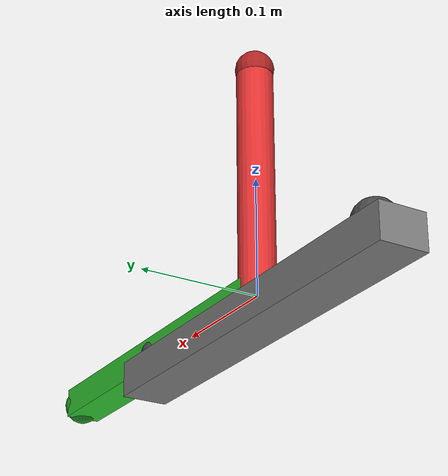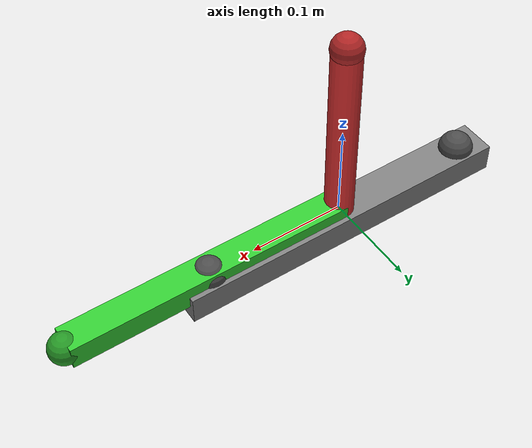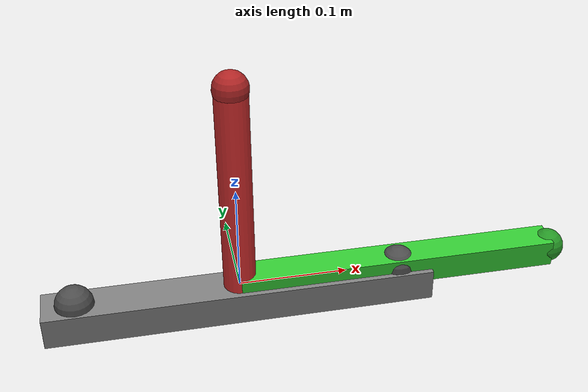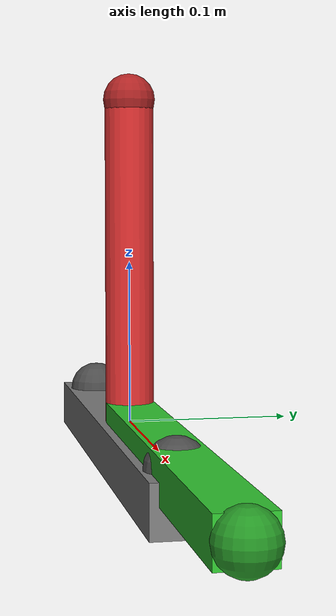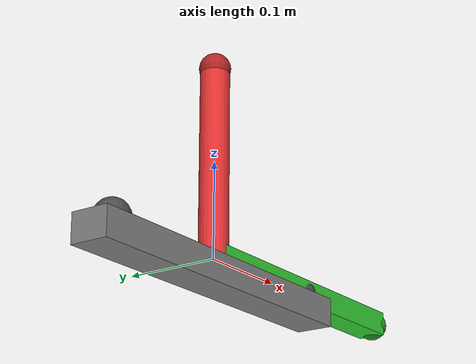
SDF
<?xml version="1.0"?>
<sdf version="1.7">
  <model name="four_bar_linkage">

    <!-- ==================== Links ==================== -->

    <!-- Ground bar (fixed base) -->
    <link name="base_link">
      <inertial>
        <pose>0 0 0 0 0 0</pose>
        <mass>5.0</mass>
        <inertia>
          <ixx>0.01</ixx><ixy>0</ixy><ixz>0</ixz>
          <iyy>0.01</iyy><iyz>0</iyz><izz>0.01</izz>
        </inertia>
      </inertial>
      <visual name="base_bar">
        <pose>0 0 -0.015 0 0 0</pose>
        <geometry>
          <box><size>0.36 0.04 0.03</size></box>
        </geometry>
        <material><diffuse>0.5 0.5 0.5 1</diffuse></material>
      </visual>
      <!-- Left pivot sphere -->
      <visual name="pivot_left">
        <pose>-0.15 0 0 0 0 0</pose>
        <geometry><sphere><radius>0.018</radius></sphere></geometry>
        <material><diffuse>0.3 0.3 0.3 1</diffuse></material>
      </visual>
      <!-- Right pivot sphere -->
      <visual name="pivot_right">
        <pose>0.15 0 0 0 0 0</pose>
        <geometry><sphere><radius>0.018</radius></sphere></geometry>
        <material><diffuse>0.3 0.3 0.3 1</diffuse></material>
      </visual>
    </link>

    <!-- Left crank -->
    <link name="crank_left">
      <inertial>
        <pose>0 0 0.1 0 0 0</pose>
        <mass>0.4</mass>
        <inertia>
          <ixx>0.0014</ixx><ixy>0</ixy><ixz>0</ixz>
          <iyy>0.0014</iyy><iyz>0</iyz><izz>0.0001</izz>
        </inertia>
      </inertial>
      <visual name="bar">
        <pose>0 0 0.1 0 0 0</pose>
        <geometry>
          <cylinder><radius>0.015</radius><length>0.2</length></cylinder>
        </geometry>
        <material><diffuse>0.9 0.2 0.2 1</diffuse></material>
      </visual>
      <visual name="pivot_top">
        <pose>0 0 0.2 0 0 0</pose>
        <geometry><sphere><radius>0.016</radius></sphere></geometry>
        <material><diffuse>0.7 0.15 0.15 1</diffuse></material>
      </visual>
    </link>

    <!-- Coupler bar (connects left crank tip → right crank tip) -->
    <link name="coupler">
      <inertial>
        <pose>0.15 0 0 0 0 0</pose>
        <mass>0.5</mass>
        <inertia>
          <ixx>0.0001</ixx><ixy>0</ixy><ixz>0</ixz>
          <iyy>0.004</iyy><iyz>0</iyz><izz>0.004</izz>
        </inertia>
      </inertial>
      <visual name="bar">
        <pose>0.15 0 0 0 0 0</pose>
        <geometry>
          <box><size>0.3 0.03 0.025</size></box>
        </geometry>
        <material><diffuse>0.2 0.8 0.2 1</diffuse></material>
      </visual>
      <visual name="pivot_right">
        <pose>0.3 0 0 0 0 0</pose>
        <geometry><sphere><radius>0.016</radius></sphere></geometry>
        <material><diffuse>0.15 0.6 0.15 1</diffuse></material>
      </visual>
    </link>

    <!-- Right crank -->
    <link name="crank_right">
      <inertial>
        <pose>0 0 0.1 0 0 0</pose>
        <mass>0.4</mass>
        <inertia>
          <ixx>0.0014</ixx><ixy>0</ixy><ixz>0</ixz>
          <iyy>0.0014</iyy><iyz>0</iyz><izz>0.0001</izz>
        </inertia>
      </inertial>
      <visual name="bar">
        <pose>0 0 0.1 0 0 0</pose>
        <geometry>
          <cylinder><radius>0.015</radius><length>0.2</length></cylinder>
        </geometry>
        <material><diffuse>0.2 0.3 0.9 1</diffuse></material>
      </visual>
      <visual name="pivot_top">
        <pose>0 0 0.2 0 0 0</pose>
        <geometry><sphere><radius>0.016</radius></sphere></geometry>
        <material><diffuse>0.15 0.2 0.7 1</diffuse></material>
      </visual>
    </link>

    <!-- ==================== Joints (spanning tree) ==================== -->

    <!-- Left ground pivot -->
    <joint name="joint_left" type="revolute">
      <parent>base_link</parent>
      <child>crank_left</child>
      <pose>-0.15 0 0 0 0 0</pose>
      <axis>
        <xyz>0 1 0</xyz>
        <limit>
          <lower>-2.356</lower>
          <upper>2.356</upper>
          <effort>10</effort>
          <velocity>5</velocity>
        </limit>
      </axis>
    </joint>

    <!-- Coupler joint at left crank tip -->
    <joint name="joint_coupler" type="revolute">
      <parent>crank_left</parent>
      <child>coupler</child>
      <pose>0 0 0.2 0 0 0</pose>
      <axis>
        <xyz>0 1 0</xyz>
        <limit>
          <lower>-3.14</lower>
          <upper>3.14</upper>
          <effort>10</effort>
          <velocity>5</velocity>
        </limit>
      </axis>
    </joint>

    <!-- Right ground pivot -->
    <joint name="joint_right" type="revolute">
      <parent>base_link</parent>
      <child>crank_right</child>
      <pose>0.15 0 0 0 0 0</pose>
      <axis>
        <xyz>0 1 0</xyz>
        <limit>
          <lower>-2.356</lower>
          <upper>2.356</upper>
          <effort>10</effort>
          <velocity>5</velocity>
        </limit>
      </axis>
    </joint>

  </model>
</sdf>
